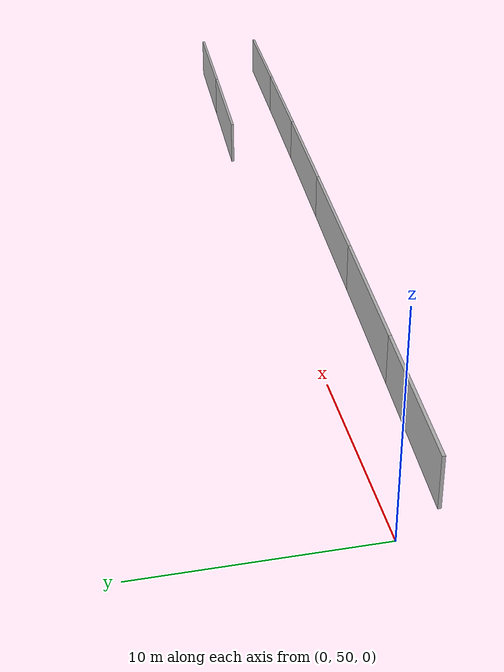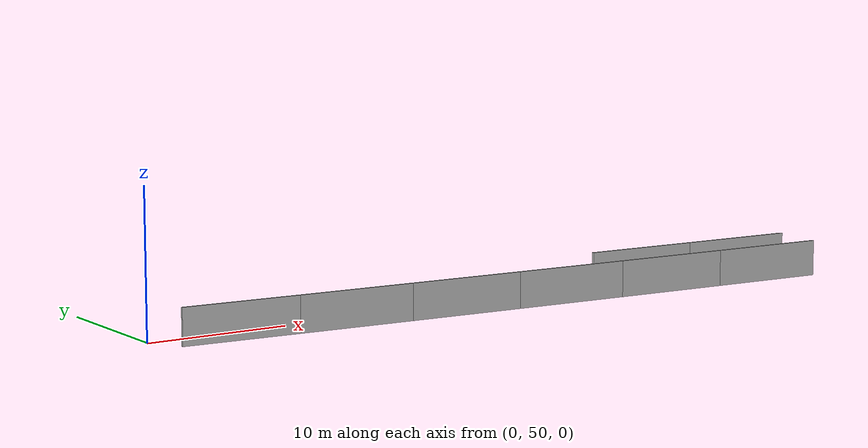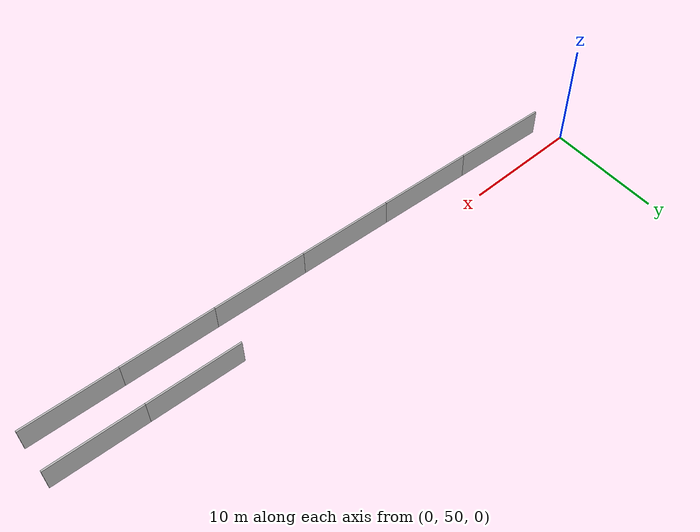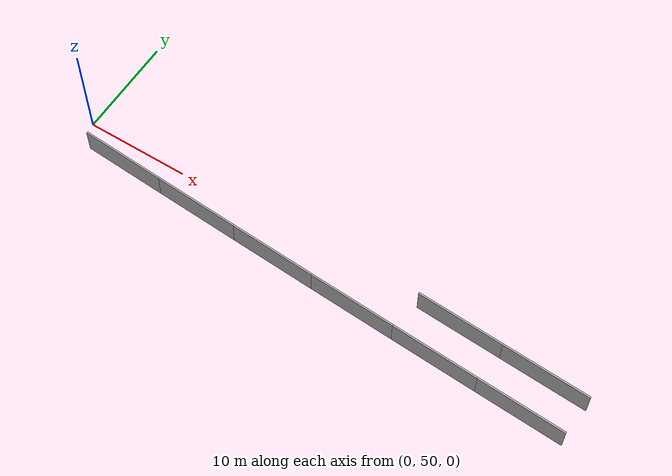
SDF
<?xml version="1.0" ?>
<sdf version="1.6">
  <model name="sps_4001">
    <pose frame="">0 0 0 0 -0 0</pose>
    <static>1</static>
    <self_collide>0</self_collide>
    <allow_auto_disable>0</allow_auto_disable>
    <link name="Wall4255">
      <kinematic>0</kinematic>
      <gravity>1</gravity>
      <self_collide>0</self_collide>
      <collision name="collision">
        <geometry>
          <box>
            <size>8.25182 0.15 2.5</size>
          </box>
        </geometry>
        <pose frame="">0 0 0 0 -0 0</pose>
      </collision>
      <visual name="visual">
        <geometry>
          <box>
            <size>8.25182 0.15 2.5</size>
          </box>
        </geometry>
        <pose frame="">0 0 0 0 -0 0</pose>
        <cast_shadows>1</cast_shadows>
        <transparency>0.0</transparency>
      </visual>
      <pose frame="">38.7486 49.614 1.25 0 0 -0.0483258</pose>
    </link>
    <link name="Wall4256">
      <kinematic>0</kinematic>
      <gravity>1</gravity>
      <self_collide>0</self_collide>
      <collision name="collision">
        <geometry>
          <box>
            <size>8.2517 0.15 2.5</size>
          </box>
        </geometry>
        <pose frame="">0 0 0 0 -0 0</pose>
      </collision>
      <visual name="visual">
        <geometry>
          <box>
            <size>8.2517 0.15 2.5</size>
          </box>
        </geometry>
        <pose frame="">0 0 0 0 -0 0</pose>
        <cast_shadows>1</cast_shadows>
        <transparency>0.0</transparency>
      </visual>
      <pose frame="">46.9911 49.2251 1.25 0 0 -0.0459717</pose>
    </link>
    <link name="Wall8993">
      <kinematic>0</kinematic>
      <gravity>1</gravity>
      <self_collide>0</self_collide>
      <collision name="collision">
        <geometry>
          <box>
            <size>8.26179 0.15 2.5</size>
          </box>
        </geometry>
        <pose frame="">0 0 0 0 -0 0</pose>
      </collision>
      <visual name="visual">
        <geometry>
          <box>
            <size>8.26179 0.15 2.5</size>
          </box>
        </geometry>
        <pose frame="">0 0 0 0 -0 0</pose>
        <cast_shadows>1</cast_shadows>
        <transparency>0.0</transparency>
      </visual>
      <pose frame="">5.46484 47.6204 1.25 0 0 -0.0578183</pose>
    </link>
    <link name="Wall8994">
      <kinematic>0</kinematic>
      <gravity>1</gravity>
      <self_collide>0</self_collide>
      <collision name="collision">
        <geometry>
          <box>
            <size>8.2619 0.15 2.5</size>
          </box>
        </geometry>
        <pose frame="">0 0 0 0 -0 0</pose>
      </collision>
      <visual name="visual">
        <geometry>
          <box>
            <size>8.2619 0.15 2.5</size>
          </box>
        </geometry>
        <pose frame="">0 0 0 0 -0 0</pose>
        <cast_shadows>1</cast_shadows>
        <transparency>0.0</transparency>
      </visual>
      <pose frame="">13.7134 47.1528 1.25 0 0 -0.055435</pose>
    </link>
    <link name="Wall8995">
      <kinematic>0</kinematic>
      <gravity>1</gravity>
      <self_collide>0</self_collide>
      <collision name="collision">
        <geometry>
          <box>
            <size>8.26188 0.15 2.5</size>
          </box>
        </geometry>
        <pose frame="">0 0 0 0 -0 0</pose>
      </collision>
      <visual name="visual">
        <geometry>
          <box>
            <size>8.26188 0.15 2.5</size>
          </box>
        </geometry>
        <pose frame="">0 0 0 0 -0 0</pose>
        <cast_shadows>1</cast_shadows>
        <transparency>0.0</transparency>
      </visual>
      <pose frame="">21.9632 46.7047 1.25 0 0 -0.0530898</pose>
    </link>
    <link name="Wall8996">
      <kinematic>0</kinematic>
      <gravity>1</gravity>
      <self_collide>0</self_collide>
      <collision name="collision">
        <geometry>
          <box>
            <size>8.26179 0.15 2.5</size>
          </box>
        </geometry>
        <pose frame="">0 0 0 0 -0 0</pose>
      </collision>
      <visual name="visual">
        <geometry>
          <box>
            <size>8.26179 0.15 2.5</size>
          </box>
        </geometry>
        <pose frame="">0 0 0 0 -0 0</pose>
        <cast_shadows>1</cast_shadows>
        <transparency>0.0</transparency>
      </visual>
      <pose frame="">30.2139 46.276 1.25 0 0 -0.0507379</pose>
    </link>
    <link name="Wall8997">
      <kinematic>0</kinematic>
      <gravity>1</gravity>
      <self_collide>0</self_collide>
      <collision name="collision">
        <geometry>
          <box>
            <size>8.26167 0.15 2.5</size>
          </box>
        </geometry>
        <pose frame="">0 0 0 0 -0 0</pose>
      </collision>
      <visual name="visual">
        <geometry>
          <box>
            <size>8.26167 0.15 2.5</size>
          </box>
        </geometry>
        <pose frame="">0 0 0 0 -0 0</pose>
        <cast_shadows>1</cast_shadows>
        <transparency>0.0</transparency>
      </visual>
      <pose frame="">38.4654 45.8668 1.25 0 0 -0.0483643</pose>
    </link>
    <link name="Wall8998">
      <kinematic>0</kinematic>
      <gravity>1</gravity>
      <self_collide>0</self_collide>
      <collision name="collision">
        <geometry>
          <box>
            <size>8.26172 0.15 2.5</size>
          </box>
        </geometry>
        <pose frame="">0 0 0 0 -0 0</pose>
      </collision>
      <visual name="visual">
        <geometry>
          <box>
            <size>8.26172 0.15 2.5</size>
          </box>
        </geometry>
        <pose frame="">0 0 0 0 -0 0</pose>
        <cast_shadows>1</cast_shadows>
        <transparency>0.0</transparency>
      </visual>
      <pose frame="">46.7179 45.4772 1.25 0 0 -0.0459825</pose>
    </link>
  </model>
</sdf>
